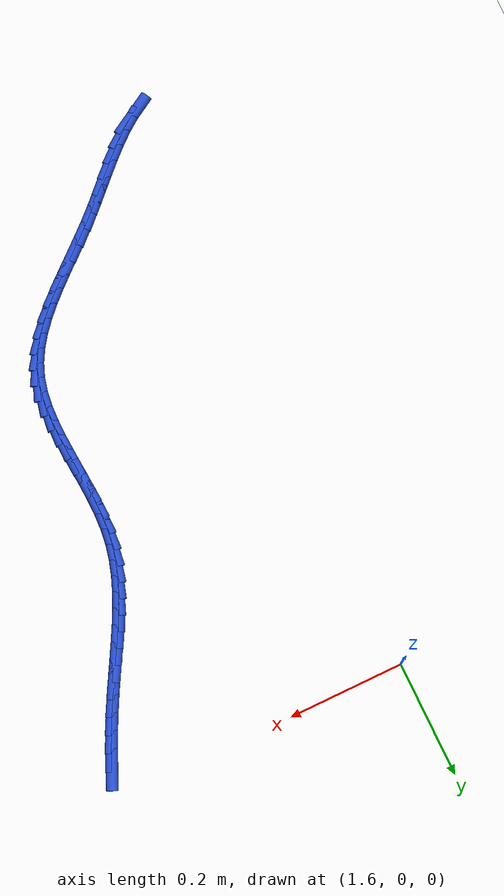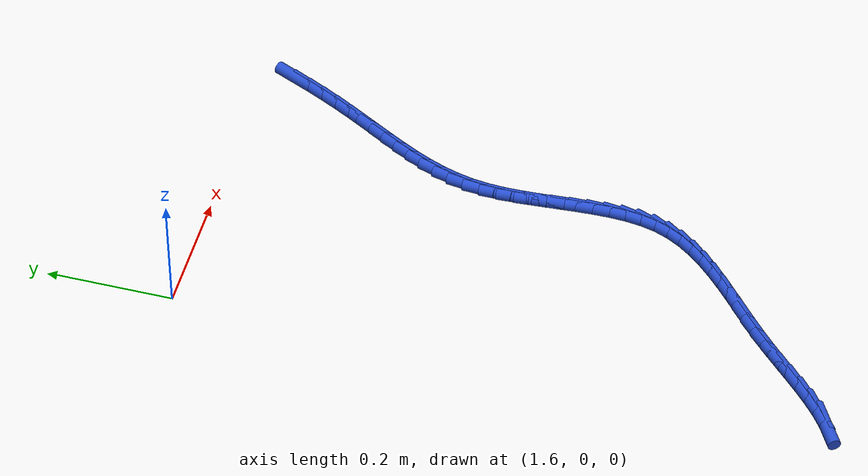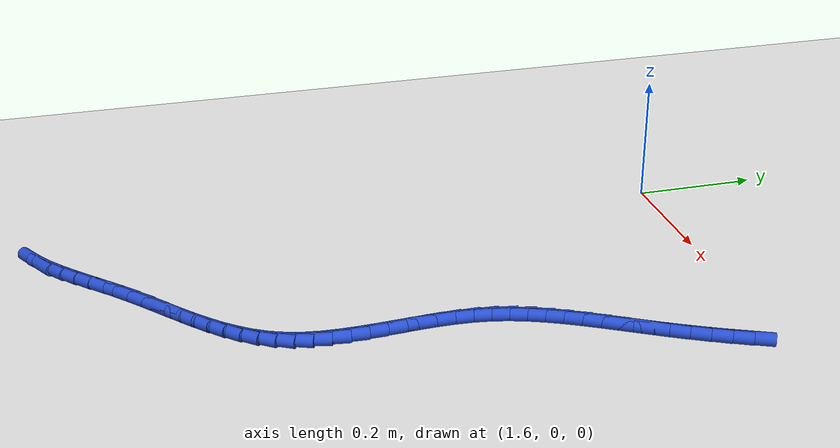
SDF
<sdf version="1.6">
 <world name="default">
  <model name="ground_plane">
   <static>1</static>
   <link name="link">
    <collision name="collision">
     <geometry><plane><normal>0 0 1</normal><size>100 100</size></plane></geometry>
     <surface><friction><ode><mu>100</mu><mu2>50</mu2></ode></friction></surface>
    </collision>
    <visual name="visual">
     <cast_shadows>0</cast_shadows>
     <geometry><plane><normal>0 0 1</normal><size>100 100</size></plane></geometry>
     <material>
      <script><uri>file://media/materials/scripts/gazebo.material</uri><name>Gazebo/WhiteGlow</name></script>
     </material>
    </visual>
   </link>
  </model>
  <model name="line">
   <link name="link_127">
    <pose>2.0955307214033168 -0.0545675383774801 0.01 0 1.57 1.1450290888665589</pose>
    <collision name="collision">
     <geometry><cylinder><radius>0.01</radius><length>0.08</length></cylinder></geometry>
    </collision>
    <visual name="visual">
     <material>
      <script><name>Gazebo/Blue</name><uri>file://media/materials/scripts/gazebo.material</uri></script>
     </material>
     <geometry><cylinder><radius>0.01</radius><length>0.08</length></cylinder></geometry>
    </visual>
   </link>
   <link name="link_128">
    <pose>2.0833147279797153 -0.08150421210635368 0.01 0 1.57 1.118147966285085</pose>
    <collision name="collision">
     <geometry><cylinder><radius>0.01</radius><length>0.08</length></cylinder></geometry>
    </collision>
    <visual name="visual">
     <material>
      <script><name>Gazebo/Blue</name><uri>file://media/materials/scripts/gazebo.material</uri></script>
     </material>
     <geometry><cylinder><radius>0.01</radius><length>0.08</length></cylinder></geometry>
    </visual>
   </link>
   <link name="link_129">
    <pose>2.0703740058378592 -0.10811338578336233 0.01 0 1.57 1.094571478852751</pose>
    <collision name="collision">
     <geometry><cylinder><radius>0.01</radius><length>0.08</length></cylinder></geometry>
    </collision>
    <visual name="visual">
     <material>
      <script><name>Gazebo/Blue</name><uri>file://media/materials/scripts/gazebo.material</uri></script>
     </material>
     <geometry><cylinder><radius>0.01</radius><length>0.08</length></cylinder></geometry>
    </visual>
   </link>
   <link name="link_130">
    <pose>2.0568628113862237 -0.13430691296010144 0.01 0 1.57 1.0740083529078683</pose>
    <collision name="collision">
     <geometry><cylinder><radius>0.01</radius><length>0.08</length></cylinder></geometry>
    </collision>
    <visual name="visual">
     <material>
      <script><name>Gazebo/Blue</name><uri>file://media/materials/scripts/gazebo.material</uri></script>
     </material>
     <geometry><cylinder><radius>0.01</radius><length>0.08</length></cylinder></geometry>
    </visual>
   </link>
   <link name="link_131">
    <pose>2.0429354010332856 -0.15999664718816642 0.01 0 1.57 1.0568658507944677</pose>
    <collision name="collision">
     <geometry><cylinder><radius>0.01</radius><length>0.08</length></cylinder></geometry>
    </collision>
    <visual name="visual">
     <material>
      <script><name>Gazebo/Blue</name><uri>file://media/materials/scripts/gazebo.material</uri></script>
     </material>
     <geometry><cylinder><radius>0.01</radius><length>0.08</length></cylinder></geometry>
    </visual>
   </link>
   <link name="link_132">
    <pose>2.0287563845964076 -0.18511312866490276 0.01 0 1.57 1.048392138229693</pose>
    <collision name="collision">
     <geometry><cylinder><radius>0.01</radius><length>0.08</length></cylinder></geometry>
    </collision>
    <visual name="visual">
     <material>
      <script><name>Gazebo/Blue</name><uri>file://media/materials/scripts/gazebo.material</uri></script>
     </material>
     <geometry><cylinder><radius>0.01</radius><length>0.08</length></cylinder></geometry>
    </visual>
   </link>
   <link name="link_133">
    <pose>2.0145762057392695 -0.20974181725682559 0.01 0 1.57 1.051617792143542</pose>
    <collision name="collision">
     <geometry><cylinder><radius>0.01</radius><length>0.08</length></cylinder></geometry>
    </collision>
    <visual name="visual">
     <material>
      <script><name>Gazebo/Blue</name><uri>file://media/materials/scripts/gazebo.material</uri></script>
     </material>
     <geometry><cylinder><radius>0.01</radius><length>0.08</length></cylinder></geometry>
    </visual>
   </link>
   <link name="link_134">
    <pose>2.000687752932769 -0.23404478055309802 0.01 0 1.57 1.0671069115881402</pose>
    <collision name="collision">
     <geometry><cylinder><radius>0.01</radius><length>0.08</length></cylinder></geometry>
    </collision>
    <visual name="visual">
     <material>
      <script><name>Gazebo/Blue</name><uri>file://media/materials/scripts/gazebo.material</uri></script>
     </material>
     <geometry><cylinder><radius>0.01</radius><length>0.08</length></cylinder></geometry>
    </visual>
   </link>
   <link name="link_135">
    <pose>1.987384216416505 -0.2581846307987386 0.01 0 1.57 1.0954282966932556</pose>
    <collision name="collision">
     <geometry><cylinder><radius>0.01</radius><length>0.08</length></cylinder></geometry>
    </collision>
    <visual name="visual">
     <material>
      <script><name>Gazebo/Blue</name><uri>file://media/materials/scripts/gazebo.material</uri></script>
     </material>
     <geometry><cylinder><radius>0.01</radius><length>0.08</length></cylinder></geometry>
    </visual>
   </link>
   <link name="link_136">
    <pose>1.9749587864300762 -0.28232398023876615 0.01 0 1.57 1.1370977068257622</pose>
    <collision name="collision">
     <geometry><cylinder><radius>0.01</radius><length>0.08</length></cylinder></geometry>
    </collision>
    <visual name="visual">
     <material>
      <script><name>Gazebo/Blue</name><uri>file://media/materials/scripts/gazebo.material</uri></script>
     </material>
     <geometry><cylinder><radius>0.01</radius><length>0.08</length></cylinder></geometry>
    </visual>
   </link>
   <link name="link_137">
    <pose>1.963704653213079 -0.30662544111819917 0.01 0 1.57 1.1924211049536524</pose>
    <collision name="collision">
     <geometry><cylinder><radius>0.01</radius><length>0.08</length></cylinder></geometry>
    </collision>
    <visual name="visual">
     <material>
      <script><name>Gazebo/Blue</name><uri>file://media/materials/scripts/gazebo.material</uri></script>
     </material>
     <geometry><cylinder><radius>0.01</radius><length>0.08</length></cylinder></geometry>
    </visual>
   </link>
   <link name="link_138">
    <pose>1.953915007005114 -0.3312516256820564 0.01 0 1.57 1.2612507886151707</pose>
    <collision name="collision">
     <geometry><cylinder><radius>0.01</radius><length>0.08</length></cylinder></geometry>
    </collision>
    <visual name="visual">
     <material>
      <script><name>Gazebo/Blue</name><uri>file://media/materials/scripts/gazebo.material</uri></script>
     </material>
     <geometry><cylinder><radius>0.01</radius><length>0.08</length></cylinder></geometry>
    </visual>
   </link>
   <link name="link_139">
    <pose>1.9458830380457763 -0.3563651461753563 0.01 0 1.57 1.3426827878883083</pose>
    <collision name="collision">
     <geometry><cylinder><radius>0.01</radius><length>0.08</length></cylinder></geometry>
    </collision>
    <visual name="visual">
     <material>
      <script><name>Gazebo/Blue</name><uri>file://media/materials/scripts/gazebo.material</uri></script>
     </material>
     <geometry><cylinder><radius>0.01</radius><length>0.08</length></cylinder></geometry>
    </visual>
   </link>
   <link name="link_140">
    <pose>1.9399019365746664 -0.3821286148431178 0.01 0 1.57 1.4337787132754765</pose>
    <collision name="collision">
     <geometry><cylinder><radius>0.01</radius><length>0.08</length></cylinder></geometry>
    </collision>
    <visual name="visual">
     <material>
      <script><name>Gazebo/Blue</name><uri>file://media/materials/scripts/gazebo.material</uri></script>
     </material>
     <geometry><cylinder><radius>0.01</radius><length>0.08</length></cylinder></geometry>
    </visual>
   </link>
   <link name="link_141">
    <pose>1.9362392053138797 -0.40869294673993745 0.01 0 1.57 1.5155765243730595</pose>
    <collision name="collision">
     <geometry><cylinder><radius>0.01</radius><length>0.08</length></cylinder></geometry>
    </collision>
    <visual name="visual">
     <material>
      <script><name>Gazebo/Blue</name><uri>file://media/materials/scripts/gazebo.material</uri></script>
     </material>
     <geometry><cylinder><radius>0.01</radius><length>0.08</length></cylinder></geometry>
    </visual>
   </link>
   <link name="link_142">
    <pose>1.934729129304209 -0.43601178485190173 0.01 0 1.57 -1.5666161113421972</pose>
    <collision name="collision">
     <geometry><cylinder><radius>0.01</radius><length>0.08</length></cylinder></geometry>
    </collision>
    <visual name="visual">
     <material>
      <script><name>Gazebo/Blue</name><uri>file://media/materials/scripts/gazebo.material</uri></script>
     </material>
     <geometry><cylinder><radius>0.01</radius><length>0.08</length></cylinder></geometry>
    </visual>
   </link>
   <link name="link_143">
    <pose>1.934845602816035 -0.46387466290589724 0.01 0 1.57 -1.528045247595084</pose>
    <collision name="collision">
     <geometry><cylinder><radius>0.01</radius><length>0.08</length></cylinder></geometry>
    </collision>
    <visual name="visual">
     <material>
      <script><name>Gazebo/Blue</name><uri>file://media/materials/scripts/gazebo.material</uri></script>
     </material>
     <geometry><cylinder><radius>0.01</radius><length>0.08</length></cylinder></geometry>
    </visual>
   </link>
   <link name="link_144">
    <pose>1.9360515528291713 -0.4920661205110968 0.01 0 1.57 -1.508753471431685</pose>
    <collision name="collision">
     <geometry><cylinder><radius>0.01</radius><length>0.08</length></cylinder></geometry>
    </collision>
    <visual name="visual">
     <material>
      <script><name>Gazebo/Blue</name><uri>file://media/materials/scripts/gazebo.material</uri></script>
     </material>
     <geometry><cylinder><radius>0.01</radius><length>0.08</length></cylinder></geometry>
    </visual>
   </link>
   <link name="link_145">
    <pose>1.9378099063234322 -0.520370697276673 0.01 0 1.57 -1.5079874416291563</pose>
    <collision name="collision">
     <geometry><cylinder><radius>0.01</radius><length>0.08</length></cylinder></geometry>
    </collision>
    <visual name="visual">
     <material>
      <script><name>Gazebo/Blue</name><uri>file://media/materials/scripts/gazebo.material</uri></script>
     </material>
     <geometry><cylinder><radius>0.01</radius><length>0.08</length></cylinder></geometry>
    </visual>
   </link>
   <link name="link_146">
    <pose>1.9395835902786318 -0.5485729328118003 0.01 0 1.57 -1.5259289574001451</pose>
    <collision name="collision">
     <geometry><cylinder><radius>0.01</radius><length>0.08</length></cylinder></geometry>
    </collision>
    <visual name="visual">
     <material>
      <script><name>Gazebo/Blue</name><uri>file://media/materials/scripts/gazebo.material</uri></script>
     </material>
     <geometry><cylinder><radius>0.01</radius><length>0.08</length></cylinder></geometry>
    </visual>
   </link>
   <link name="link_147">
    <pose>1.9408355316745847 -0.5764573667256512 0.01 0 1.57 -1.5637354736902465</pose>
    <collision name="collision">
     <geometry><cylinder><radius>0.01</radius><length>0.08</length></cylinder></geometry>
    </collision>
    <visual name="visual">
     <material>
      <script><name>Gazebo/Blue</name><uri>file://media/materials/scripts/gazebo.material</uri></script>
     </material>
     <geometry><cylinder><radius>0.01</radius><length>0.08</length></cylinder></geometry>
    </visual>
   </link>
   <link name="link_148">
    <pose>1.9410286574911044 -0.6038085386273986 0.01 0 1.57 1.5181145309456572</pose>
    <collision name="collision">
     <geometry><cylinder><radius>0.01</radius><length>0.08</length></cylinder></geometry>
    </collision>
    <visual name="visual">
     <material>
      <script><name>Gazebo/Blue</name><uri>file://media/materials/scripts/gazebo.material</uri></script>
     </material>
     <geometry><cylinder><radius>0.01</radius><length>0.08</length></cylinder></geometry>
    </visual>
   </link>
   <link name="link_149">
    <pose>1.939625894708006 -0.6304109881262158 0.01 0 1.57 1.4337526682595112</pose>
    <collision name="collision">
     <geometry><cylinder><radius>0.01</radius><length>0.08</length></cylinder></geometry>
    </collision>
    <visual name="visual">
     <material>
      <script><name>Gazebo/Blue</name><uri>file://media/materials/scripts/gazebo.material</uri></script>
     </material>
     <geometry><cylinder><radius>0.01</radius><length>0.08</length></cylinder></geometry>
    </visual>
   </link>
   <link name="link_150">
    <pose>1.9360901703051028 -0.6560492548312757 0.01 0 1.57 1.322315065876075</pose>
    <collision name="collision">
     <geometry><cylinder><radius>0.01</radius><length>0.08</length></cylinder></geometry>
    </collision>
    <visual name="visual">
     <material>
      <script><name>Gazebo/Blue</name><uri>file://media/materials/scripts/gazebo.material</uri></script>
     </material>
     <geometry><cylinder><radius>0.01</radius><length>0.08</length></cylinder></geometry>
    </visual>
   </link>
   <link name="link_151">
    <pose>1.929884411262209 -0.6805078783517515 0.01 0 1.57 1.1863337495504822</pose>
    <collision name="collision">
     <geometry><cylinder><radius>0.01</radius><length>0.08</length></cylinder></geometry>
    </collision>
    <visual name="visual">
     <material>
      <script><name>Gazebo/Blue</name><uri>file://media/materials/scripts/gazebo.material</uri></script>
     </material>
     <geometry><cylinder><radius>0.01</radius><length>0.08</length></cylinder></geometry>
    </visual>
   </link>
   <link name="link_152">
    <pose>1.9205403199843145 -0.7036027185422358 0.01 0 1.57 1.0547843893105804</pose>
    <collision name="collision">
     <geometry><cylinder><radius>0.01</radius><length>0.08</length></cylinder></geometry>
    </collision>
    <visual name="visual">
     <material>
      <script><name>Gazebo/Blue</name><uri>file://media/materials/scripts/gazebo.material</uri></script>
     </material>
     <geometry><cylinder><radius>0.01</radius><length>0.08</length></cylinder></geometry>
    </visual>
   </link>
   <link name="link_153">
    <pose>1.9081678382111427 -0.7254129647507976 0.01 0 1.57 0.9445135849388827</pose>
    <collision name="collision">
     <geometry><cylinder><radius>0.01</radius><length>0.08</length></cylinder></geometry>
    </collision>
    <visual name="visual">
     <material>
      <script><name>Gazebo/Blue</name><uri>file://media/materials/scripts/gazebo.material</uri></script>
     </material>
     <geometry><cylinder><radius>0.01</radius><length>0.08</length></cylinder></geometry>
    </visual>
   </link>
   <link name="link_154">
    <pose>1.8931662236519633 -0.7461495604680195 0.01 0 1.57 0.8565776982874522</pose>
    <collision name="collision">
     <geometry><cylinder><radius>0.01</radius><length>0.08</length></cylinder></geometry>
    </collision>
    <visual name="visual">
     <material>
      <script><name>Gazebo/Blue</name><uri>file://media/materials/scripts/gazebo.material</uri></script>
     </material>
     <geometry><cylinder><radius>0.01</radius><length>0.08</length></cylinder></geometry>
    </visual>
   </link>
   <link name="link_155">
    <pose>1.8759368849750977 -0.7660244287286335 0.01 0 1.57 0.7898235925843411</pose>
    <collision name="collision">
     <geometry><cylinder><radius>0.01</radius><length>0.08</length></cylinder></geometry>
    </collision>
    <visual name="visual">
     <material>
      <script><name>Gazebo/Blue</name><uri>file://media/materials/scripts/gazebo.material</uri></script>
     </material>
     <geometry><cylinder><radius>0.01</radius><length>0.08</length></cylinder></geometry>
    </visual>
   </link>
   <link name="link_156">
    <pose>1.8568812308488687 -0.7852494925673719 0.01 0 1.57 0.7423009601570887</pose>
    <collision name="collision">
     <geometry><cylinder><radius>0.01</radius><length>0.08</length></cylinder></geometry>
    </collision>
    <visual name="visual">
     <material>
      <script><name>Gazebo/Blue</name><uri>file://media/materials/scripts/gazebo.material</uri></script>
     </material>
     <geometry><cylinder><radius>0.01</radius><length>0.08</length></cylinder></geometry>
    </visual>
   </link>
   <link name="link_157">
    <pose>1.836400669941596 -0.8040366750189668 0.01 0 1.57 0.7120788327545612</pose>
    <collision name="collision">
     <geometry><cylinder><radius>0.01</radius><length>0.08</length></cylinder></geometry>
    </collision>
    <visual name="visual">
     <material>
      <script><name>Gazebo/Blue</name><uri>file://media/materials/scripts/gazebo.material</uri></script>
     </material>
     <geometry><cylinder><radius>0.01</radius><length>0.08</length></cylinder></geometry>
    </visual>
   </link>
   <link name="link_158">
    <pose>1.8148966109216005 -0.8225978991181497 0.01 0 1.57 0.6976314437231519</pose>
    <collision name="collision">
     <geometry><cylinder><radius>0.01</radius><length>0.08</length></cylinder></geometry>
    </collision>
    <visual name="visual">
     <material>
      <script><name>Gazebo/Blue</name><uri>file://media/materials/scripts/gazebo.material</uri></script>
     </material>
     <geometry><cylinder><radius>0.01</radius><length>0.08</length></cylinder></geometry>
    </visual>
   </link>
   <link name="link_159">
    <pose>1.7927704624572047 -0.8411450878996536 0.01 0 1.57 0.6979704521181672</pose>
    <collision name="collision">
     <geometry><cylinder><radius>0.01</radius><length>0.08</length></cylinder></geometry>
    </collision>
    <visual name="visual">
     <material>
      <script><name>Gazebo/Blue</name><uri>file://media/materials/scripts/gazebo.material</uri></script>
     </material>
     <geometry><cylinder><radius>0.01</radius><length>0.08</length></cylinder></geometry>
    </visual>
   </link>
   <link name="link_160">
    <pose>1.7704236332167287 -0.8598901643982094 0.01 0 1.57 0.7126530357930208</pose>
    <collision name="collision">
     <geometry><cylinder><radius>0.01</radius><length>0.08</length></cylinder></geometry>
    </collision>
    <visual name="visual">
     <material>
      <script><name>Gazebo/Blue</name><uri>file://media/materials/scripts/gazebo.material</uri></script>
     </material>
     <geometry><cylinder><radius>0.01</radius><length>0.08</length></cylinder></geometry>
    </visual>
   </link>
   <link name="link_161">
    <pose>1.748257531868494 -0.8790450516485502 0.01 0 1.57 0.7406474800112928</pose>
    <collision name="collision">
     <geometry><cylinder><radius>0.01</radius><length>0.08</length></cylinder></geometry>
    </collision>
    <visual name="visual">
     <material>
      <script><name>Gazebo/Blue</name><uri>file://media/materials/scripts/gazebo.material</uri></script>
     </material>
     <geometry><cylinder><radius>0.01</radius><length>0.08</length></cylinder></geometry>
    </visual>
   </link>
   <link name="link_162">
    <pose>1.7266522647220124 -0.8987982621665029 0.01 0 1.57 0.7653226417964907</pose>
    <collision name="collision">
     <geometry><cylinder><radius>0.01</radius><length>0.08</length></cylinder></geometry>
    </collision>
    <visual name="visual">
     <material>
      <script><name>Gazebo/Blue</name><uri>file://media/materials/scripts/gazebo.material</uri></script>
     </material>
     <geometry><cylinder><radius>0.01</radius><length>0.08</length></cylinder></geometry>
    </visual>
   </link>
   <link name="link_163">
    <pose>1.7056533133436906 -0.9189705680244858 0.01 0 1.57 0.7732898508489877</pose>
    <collision name="collision">
     <geometry><cylinder><radius>0.01</radius><length>0.08</length></cylinder></geometry>
    </collision>
    <visual name="visual">
     <material>
      <script><name>Gazebo/Blue</name><uri>file://media/materials/scripts/gazebo.material</uri></script>
     </material>
     <geometry><cylinder><radius>0.01</radius><length>0.08</length></cylinder></geometry>
    </visual>
   </link>
   <link name="link_164">
    <pose>1.6850401940972126 -0.939090455193556 0.01 0 1.57 0.7637441026565581</pose>
    <collision name="collision">
     <geometry><cylinder><radius>0.01</radius><length>0.08</length></cylinder></geometry>
    </collision>
    <visual name="visual">
     <material>
      <script><name>Gazebo/Blue</name><uri>file://media/materials/scripts/gazebo.material</uri></script>
     </material>
     <geometry><cylinder><radius>0.01</radius><length>0.08</length></cylinder></geometry>
    </visual>
   </link>
   <link name="link_165">
    <pose>1.6645850803064968 -0.9586783399106723 0.01 0 1.57 0.7356036805697769</pose>
    <collision name="collision">
     <geometry><cylinder><radius>0.01</radius><length>0.08</length></cylinder></geometry>
    </collision>
    <visual name="visual">
     <material>
      <script><name>Gazebo/Blue</name><uri>file://media/materials/scripts/gazebo.material</uri></script>
     </material>
     <geometry><cylinder><radius>0.01</radius><length>0.08</length></cylinder></geometry>
    </visual>
   </link>
   <link name="link_166">
    <pose>1.6440601452954617 -0.9772546384127943 0.01 0 1.57 0.6871222668170653</pose>
    <collision name="collision">
     <geometry><cylinder><radius>0.01</radius><length>0.08</length></cylinder></geometry>
    </collision>
    <visual name="visual">
     <material>
      <script><name>Gazebo/Blue</name><uri>file://media/materials/scripts/gazebo.material</uri></script>
     </material>
     <geometry><cylinder><radius>0.01</radius><length>0.08</length></cylinder></geometry>
    </visual>
   </link>
   <link name="link_167">
    <pose>1.6232375623880255 -0.994339766936881 0.01 0 1.57 0.6160733797900637</pose>
    <collision name="collision">
     <geometry><cylinder><radius>0.01</radius><length>0.08</length></cylinder></geometry>
    </collision>
    <visual name="visual">
     <material>
      <script><name>Gazebo/Blue</name><uri>file://media/materials/scripts/gazebo.material</uri></script>
     </material>
     <geometry><cylinder><radius>0.01</radius><length>0.08</length></cylinder></geometry>
    </visual>
   </link>
   <link name="link_168">
    <pose>1.601889504908107 -1.0094541417198921 0.01 0 1.57 0.5203285218842525</pose>
    <collision name="collision">
     <geometry><cylinder><radius>0.01</radius><length>0.08</length></cylinder></geometry>
    </collision>
    <visual name="visual">
     <material>
      <script><name>Gazebo/Blue</name><uri>file://media/materials/scripts/gazebo.material</uri></script>
     </material>
     <geometry><cylinder><radius>0.01</radius><length>0.08</length></cylinder></geometry>
    </visual>
   </link>
  </model>
 </world>
</sdf>
